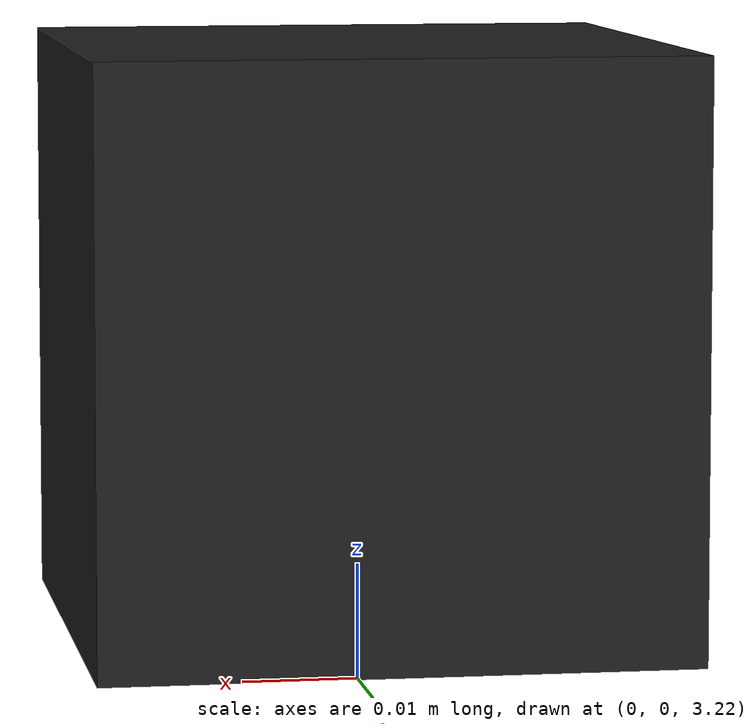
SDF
<sdf version='1.7'>
  <model name='overhead_camera'>
    <link name='camera_link'>
      <visual name='camera_link_visual'>
        <pose>0 0 3.25 -1.5708 1.5708 0</pose>
        <geometry>
          <box>
            <size>0.05 0.05 0.05</size>
          </box>
        </geometry>
        <material>
          <script>
            <name>Gazebo/Black</name>
            <uri>file://media/materials/scripts/gazebo.material</uri>
          </script>
        </material>
      </visual>
      <sensor name='overhead_camera' type='camera'>
        <update_rate>30</update_rate>
        <visualize>true</visualize>
        <camera name='head'>
          <horizontal_fov>1.39626</horizontal_fov>
          <image>
            <width>640</width>
            <height>480</height>
            <format>R8G8B8</format>
          </image>
          <clip>
            <near>0.02</near>
            <far>300</far>
          </clip>
          <noise>
            <type>gaussian</type>
            <mean>0</mean>
            <stddev>0.007</stddev>
          </noise>
        </camera>
        <plugin name='camera_controller' filename='libgazebo_ros_camera.so'>
          <ros>
            <namespace>overhead_camera</namespace>
          </ros>
        </plugin>
        <pose>0 0 3.25 3.14159 1.57079 -1.57079</pose>
      </sensor>
    </link>
  </model>
</sdf>
